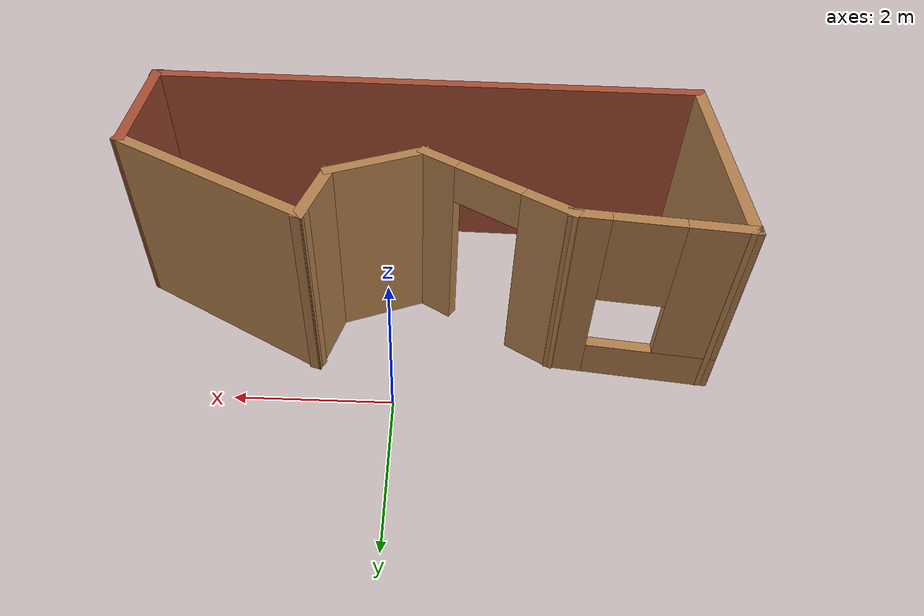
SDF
<?xml version='1.0'?>
<sdf version='1.6'>
  <model name='building'>
    <pose frame=''>-0.210439 -2.06663 0 0 -0 0</pose>
    <link name='Wall_0'>
      <pose frame=''>-2.72956 1.41596 0 0 -0 3.02702</pose>
      <visual name='Wall_0_Visual_0'>
        <pose frame=''>-0.789139 0 1.25 0 -0 0</pose>
        <geometry>
          <box>
            <size>0.484262 0.15 2.5</size>
          </box>
        </geometry>
        <material>
          <script>
            <uri>file://media/materials/scripts/gazebo.material</uri>
            <name>Gazebo/Wood</name>
          </script>
          <ambient>1 1 1 1</ambient>
        </material>
        <meta>
          <layer>0</layer>
        </meta>
      </visual>
      <collision name='Wall_0_Collision_0'>
        <geometry>
          <box>
            <size>0.484262 0.15 2.5</size>
          </box>
        </geometry>
        <pose frame=''>-0.789139 0 1.25 0 -0 0</pose>
      </collision>
      <visual name='Wall_0_Visual_1'>
        <pose frame=''>0.242131 0 0.25 0 -0 0</pose>
        <geometry>
          <box>
            <size>1.57828 0.15 0.5</size>
          </box>
        </geometry>
        <material>
          <script>
            <uri>file://media/materials/scripts/gazebo.material</uri>
            <name>Gazebo/Wood</name>
          </script>
          <ambient>1 1 1 1</ambient>
        </material>
        <meta>
          <layer>0</layer>
        </meta>
      </visual>
      <collision name='Wall_0_Collision_1'>
        <geometry>
          <box>
            <size>1.57828 0.15 0.5</size>
          </box>
        </geometry>
        <pose frame=''>0.242131 0 0.25 0 -0 0</pose>
      </collision>
      <visual name='Wall_0_Visual_2'>
        <pose frame=''>0.642131 0 1.5 0 -0 0</pose>
        <geometry>
          <box>
            <size>0.778278 0.15 2</size>
          </box>
        </geometry>
        <material>
          <script>
            <uri>file://media/materials/scripts/gazebo.material</uri>
            <name>Gazebo/Wood</name>
          </script>
          <ambient>1 1 1 1</ambient>
        </material>
        <meta>
          <layer>0</layer>
        </meta>
      </visual>
      <collision name='Wall_0_Collision_2'>
        <geometry>
          <box>
            <size>0.778278 0.15 2</size>
          </box>
        </geometry>
        <pose frame=''>0.642131 0 1.5 0 -0 0</pose>
      </collision>
      <visual name='Wall_0_Visual_3'>
        <pose frame=''>-0.147008 0 1.9 0 -0 0</pose>
        <geometry>
          <box>
            <size>0.8 0.15 1.2</size>
          </box>
        </geometry>
        <material>
          <script>
            <uri>file://media/materials/scripts/gazebo.material</uri>
            <name>Gazebo/Wood</name>
          </script>
          <ambient>1 1 1 1</ambient>
        </material>
        <meta>
          <layer>0</layer>
        </meta>
      </visual>
      <collision name='Wall_0_Collision_3'>
        <geometry>
          <box>
            <size>0.8 0.15 1.2</size>
          </box>
        </geometry>
        <pose frame=''>-0.147008 0 1.9 0 -0 0</pose>
      </collision>
    </link>
    <link name='Wall_1'>
      <collision name='Wall_1_Collision'>
        <geometry>
          <box>
            <size>3 0.15 2.5</size>
          </box>
        </geometry>
        <pose frame=''>0 0 1.25 0 -0 0</pose>
      </collision>
      <visual name='Wall_1_Visual'>
        <pose frame=''>0 0 1.25 0 -0 0</pose>
        <geometry>
          <box>
            <size>3 0.15 2.5</size>
          </box>
        </geometry>
        <material>
          <script>
            <uri>file://media/materials/scripts/gazebo.material</uri>
            <name>Gazebo/Wood</name>
          </script>
          <ambient>1 1 1 1</ambient>
        </material>
        <meta>
          <layer>0</layer>
        </meta>
      </visual>
      <pose frame=''>-3.67956 0.100285 0 0 0 -1.5708</pose>
    </link>
    <link name='Wall_2'>
      <collision name='Wall_2_Collision'>
        <geometry>
          <box>
            <size>7.49269 0.15 2.5</size>
          </box>
        </geometry>
        <pose frame=''>0 0 1.25 0 -0 0</pose>
      </collision>
      <visual name='Wall_2_Visual'>
        <pose frame=''>0 0 1.25 0 -0 0</pose>
        <geometry>
          <box>
            <size>7.49269 0.15 2.5</size>
          </box>
        </geometry>
        <material>
          <script>
            <uri>file://media/materials/scripts/gazebo.material</uri>
            <name>Gazebo/Bricks</name>
          </script>
          <ambient>0.921569 0.807843 0.615686 1</ambient>
        </material>
        <meta>
          <layer>0</layer>
        </meta>
      </visual>
      <pose frame=''>-0.009561 -1.42404 0 0 0 -0.027058</pose>
    </link>
    <link name='Wall_3'>
      <collision name='Wall_3_Collision'>
        <geometry>
          <box>
            <size>1.75 0.15 2.5</size>
          </box>
        </geometry>
        <pose frame=''>0 0 1.25 0 -0 0</pose>
      </collision>
      <visual name='Wall_3_Visual'>
        <pose frame=''>0 0 1.25 0 -0 0</pose>
        <geometry>
          <box>
            <size>1.75 0.15 2.5</size>
          </box>
        </geometry>
        <material>
          <script>
            <uri>file://media/materials/scripts/gazebo.material</uri>
            <name>Gazebo/Bricks</name>
          </script>
          <ambient>0.921569 0.807843 0.615686 1</ambient>
        </material>
        <meta>
          <layer>0</layer>
        </meta>
      </visual>
      <pose frame=''>3.65044 -0.733368 0 0 -0 1.5708</pose>
    </link>
    <link name='Wall_4'>
      <collision name='Wall_4_Collision'>
        <geometry>
          <box>
            <size>2.95321 0.15 2.5</size>
          </box>
        </geometry>
        <pose frame=''>0 0 1.25 0 -0 0</pose>
      </collision>
      <visual name='Wall_4_Visual'>
        <pose frame=''>0 0 1.25 0 -0 0</pose>
        <geometry>
          <box>
            <size>2.95321 0.15 2.5</size>
          </box>
        </geometry>
        <material>
          <script>
            <uri>file://media/materials/scripts/gazebo.material</uri>
            <name>Gazebo/Wood</name>
          </script>
          <ambient>1 1 1 1</ambient>
        </material>
        <meta>
          <layer>0</layer>
        </meta>
      </visual>
      <pose frame=''>2.44044 0.766632 0 0 -0 2.62687</pose>
    </link>
    <link name='Wall_5'>
      <collision name='Wall_5_Collision'>
        <geometry>
          <box>
            <size>1 0.15 2.5</size>
          </box>
        </geometry>
        <pose frame=''>0 0 1.25 0 -0 0</pose>
      </collision>
      <visual name='Wall_5_Visual'>
        <pose frame=''>0 0 1.25 0 -0 0</pose>
        <geometry>
          <box>
            <size>1 0.15 2.5</size>
          </box>
        </geometry>
        <material>
          <script>
            <uri>file://media/materials/scripts/gazebo.material</uri>
            <name>Gazebo/Wood</name>
          </script>
          <ambient>1 1 1 1</ambient>
        </material>
        <meta>
          <layer>0</layer>
        </meta>
      </visual>
      <pose frame=''>1.12044 1.05611 0 0 0 -1.8326</pose>
    </link>
    <link name='Wall_6'>
      <collision name='Wall_6_Collision'>
        <geometry>
          <box>
            <size>1.35115 0.15 2.5</size>
          </box>
        </geometry>
        <pose frame=''>0 0 1.25 0 -0 0</pose>
      </collision>
      <visual name='Wall_6_Visual'>
        <pose frame=''>0 0 1.25 0 -0 0</pose>
        <geometry>
          <box>
            <size>1.35115 0.15 2.5</size>
          </box>
        </geometry>
        <material>
          <script>
            <uri>file://media/materials/scripts/gazebo.material</uri>
            <name>Gazebo/Wood</name>
          </script>
          <ambient>1 1 1 1</ambient>
        </material>
        <meta>
          <layer>0</layer>
        </meta>
      </visual>
      <pose frame=''>0.455441 0.416114 0 0 0 -2.74952</pose>
    </link>
    <link name='Wall_7'>
      <pose frame=''>-0.939561 0.751632 0 0 -0 2.55772</pose>
      <visual name='Wall_7_Visual_0'>
        <pose frame=''>-0.803403 0 1.25 0 -0 0</pose>
        <geometry>
          <box>
            <size>0.556774 0.15 2.5</size>
          </box>
        </geometry>
        <material>
          <script>
            <uri>file://media/materials/scripts/gazebo.material</uri>
            <name>Gazebo/Wood</name>
          </script>
          <ambient>1 1 1 1</ambient>
        </material>
        <meta>
          <layer>0</layer>
        </meta>
      </visual>
      <collision name='Wall_7_Collision_0'>
        <geometry>
          <box>
            <size>0.556774 0.15 2.5</size>
          </box>
        </geometry>
        <pose frame=''>-0.803403 0 1.25 0 -0 0</pose>
      </collision>
      <visual name='Wall_7_Visual_1'>
        <pose frame=''>0.728387 0 1.25 0 -0 0</pose>
        <geometry>
          <box>
            <size>0.706805 0.15 2.5</size>
          </box>
        </geometry>
        <material>
          <script>
            <uri>file://media/materials/scripts/gazebo.material</uri>
            <name>Gazebo/Wood</name>
          </script>
          <ambient>1 1 1 1</ambient>
        </material>
        <meta>
          <layer>0</layer>
        </meta>
      </visual>
      <collision name='Wall_7_Collision_1'>
        <geometry>
          <box>
            <size>0.706805 0.15 2.5</size>
          </box>
        </geometry>
        <pose frame=''>0.728387 0 1.25 0 -0 0</pose>
      </collision>
      <visual name='Wall_7_Visual_2'>
        <pose frame=''>-0.075016 0 2.25 0 -0 0</pose>
        <geometry>
          <box>
            <size>0.9 0.15 0.5</size>
          </box>
        </geometry>
        <material>
          <script>
            <uri>file://media/materials/scripts/gazebo.material</uri>
            <name>Gazebo/Wood</name>
          </script>
          <ambient>1 1 1 1</ambient>
        </material>
        <meta>
          <layer>0</layer>
        </meta>
      </visual>
      <collision name='Wall_7_Collision_2'>
        <geometry>
          <box>
            <size>0.9 0.15 0.5</size>
          </box>
        </geometry>
        <pose frame=''>-0.075016 0 2.25 0 -0 0</pose>
      </collision>
    </link>
    <static>1</static>
  </model>
</sdf>
